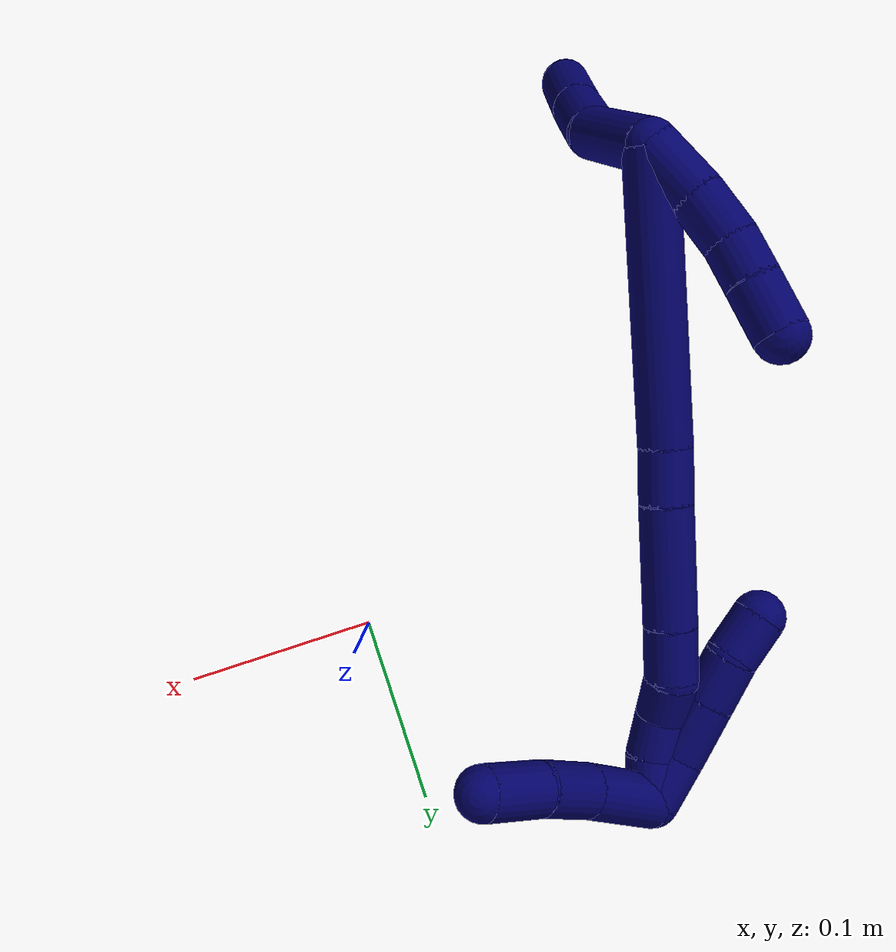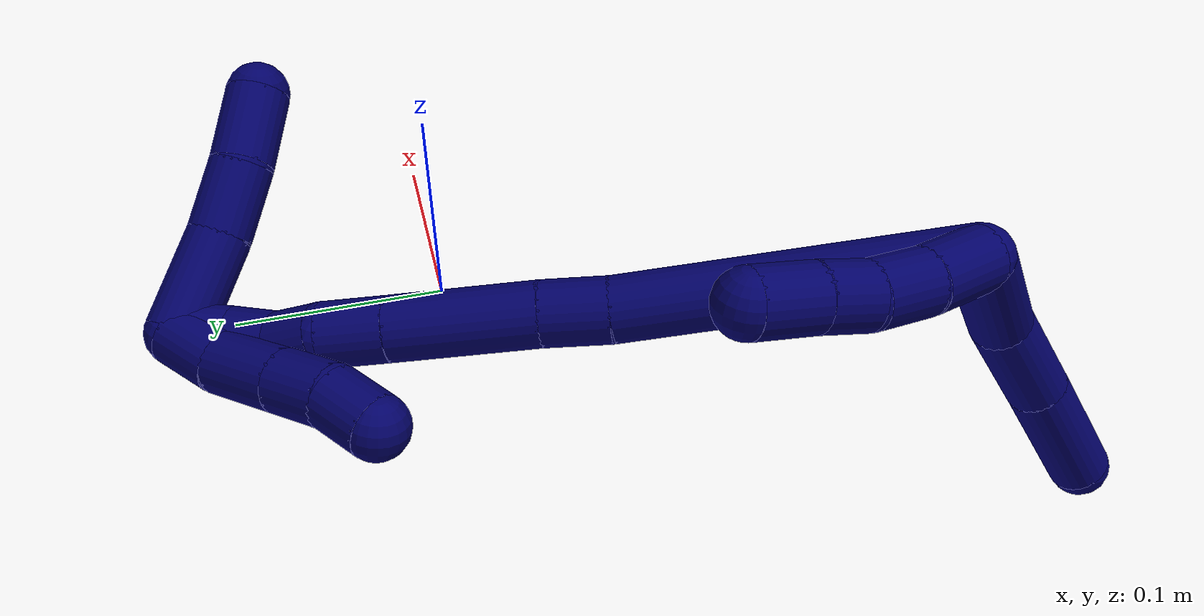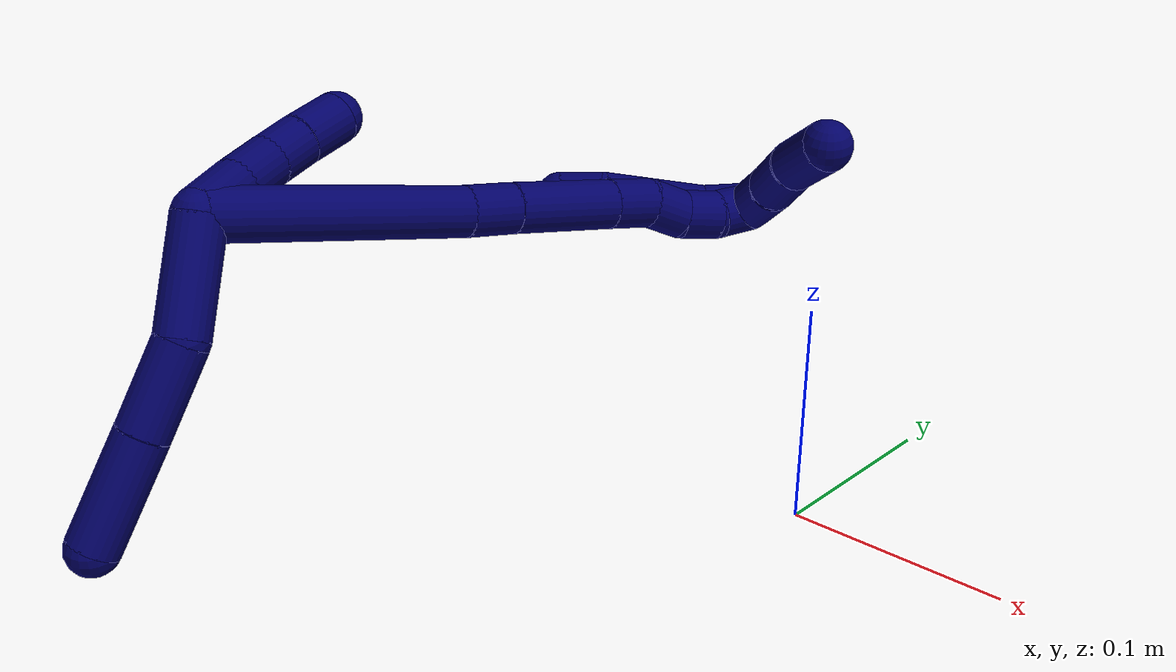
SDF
<sdf version="1.7">
 <world name="default">
  <model name="7">
   <static>0</static>
   <link name="7">
    <collision name="collision-cylinder-e_1_2_8">
     <pose>0.010413 -0.014123 -0.020198 2.5314 0.399748 1.14324</pose>
     <geometry><cylinder><radius>0.0125</radius><length>0.053511</length></cylinder></geometry>
     <surface>
      <friction><ode><mu>1.16</mu><mu2>1.16</mu2><slip1>0</slip1><slip2>0</slip2></ode></friction>
      <contact><ode><kp>1e+06</kp><kd>1</kd><max_vel>0</max_vel><min_depth>0.001</min_depth></ode></contact>
     </surface>
    </collision>
    <visual name="visual-cylinder-e_1_2_8">
     <pose>0.010413 -0.014123 -0.020198 2.5314 0.399748 1.14324</pose>
     <geometry><cylinder><radius>0.0125</radius><length>0.053511</length></cylinder></geometry>
     <material><ambient>0.003922 0 0.403922 1</ambient></material>
    </visual>
    <collision name="collision-cylinder-e_2_8_9">
     <pose>0.022394 -0.041488 -0.057008 2.46854 0.073677 0.209926</pose>
     <geometry><cylinder><radius>0.0125</radius><length>0.042602</length></cylinder></geometry>
     <surface>
      <friction><ode><mu>1.16</mu><mu2>1.16</mu2><slip1>0</slip1><slip2>0</slip2></ode></friction>
      <contact><ode><kp>1e+06</kp><kd>1</kd><max_vel>0</max_vel><min_depth>0.001</min_depth></ode></contact>
     </surface>
    </collision>
    <visual name="visual-cylinder-e_2_8_9">
     <pose>0.022394 -0.041488 -0.057008 2.46854 0.073677 0.209926</pose>
     <geometry><cylinder><radius>0.0125</radius><length>0.042602</length></cylinder></geometry>
     <material><ambient>0.003922 0 0.403922 1</ambient></material>
    </visual>
    <collision name="collision-cylinder-e_3_9_6">
     <pose>0.025031 -0.071212 -0.094906 2.48276 0.039709 0.116037</pose>
     <geometry><cylinder><radius>0.0125</radius><length>0.053886</length></cylinder></geometry>
     <surface>
      <friction><ode><mu>1.16</mu><mu2>1.16</mu2><slip1>0</slip1><slip2>0</slip2></ode></friction>
      <contact><ode><kp>1e+06</kp><kd>1</kd><max_vel>0</max_vel><min_depth>0.001</min_depth></ode></contact>
     </surface>
    </collision>
    <visual name="visual-cylinder-e_3_9_6">
     <pose>0.025031 -0.071212 -0.094906 2.48276 0.039709 0.116037</pose>
     <geometry><cylinder><radius>0.0125</radius><length>0.053886</length></cylinder></geometry>
     <material><ambient>0.003922 0 0.403922 1</ambient></material>
    </visual>
    <collision name="collision-cylinder-e_1_2_10">
     <pose>-0.006631 0.013186 -0.000894 -1.63852 -0.464991 0.496316</pose>
     <geometry><cylinder><radius>0.0125</radius><length>0.029573</length></cylinder></geometry>
     <surface>
      <friction><ode><mu>1.16</mu><mu2>1.16</mu2><slip1>0</slip1><slip2>0</slip2></ode></friction>
      <contact><ode><kp>1e+06</kp><kd>1</kd><max_vel>0</max_vel><min_depth>0.001</min_depth></ode></contact>
     </surface>
    </collision>
    <visual name="visual-cylinder-e_1_2_10">
     <pose>-0.006631 0.013186 -0.000894 -1.63852 -0.464991 0.496316</pose>
     <geometry><cylinder><radius>0.0125</radius><length>0.029573</length></cylinder></geometry>
     <material><ambient>0.003922 0 0.403922 1</ambient></material>
    </visual>
    <collision name="collision-cylinder-e_2_10_11">
     <pose>-0.017524 0.038015 -0.001982 -1.58736 -0.350926 0.356666</pose>
     <geometry><cylinder><radius>0.0125</radius><length>0.0248</length></cylinder></geometry>
     <surface>
      <friction><ode><mu>1.16</mu><mu2>1.16</mu2><slip1>0</slip1><slip2>0</slip2></ode></friction>
      <contact><ode><kp>1e+06</kp><kd>1</kd><max_vel>0</max_vel><min_depth>0.001</min_depth></ode></contact>
     </surface>
    </collision>
    <visual name="visual-cylinder-e_2_10_11">
     <pose>-0.017524 0.038015 -0.001982 -1.58736 -0.350926 0.356666</pose>
     <geometry><cylinder><radius>0.0125</radius><length>0.0248</length></cylinder></geometry>
     <material><ambient>0.003922 0 0.403922 1</ambient></material>
    </visual>
    <collision name="collision-cylinder-e_3_11_12">
     <pose>-0.023752 0.059641 -0.001268 -1.48025 -0.19357 0.176882</pose>
     <geometry><cylinder><radius>0.0125</radius><length>0.02043</length></cylinder></geometry>
     <surface>
      <friction><ode><mu>1.16</mu><mu2>1.16</mu2><slip1>0</slip1><slip2>0</slip2></ode></friction>
      <contact><ode><kp>1e+06</kp><kd>1</kd><max_vel>0</max_vel><min_depth>0.001</min_depth></ode></contact>
     </surface>
    </collision>
    <visual name="visual-cylinder-e_3_11_12">
     <pose>-0.023752 0.059641 -0.001268 -1.48025 -0.19357 0.176882</pose>
     <geometry><cylinder><radius>0.0125</radius><length>0.02043</length></cylinder></geometry>
     <material><ambient>0.003922 0 0.403922 1</ambient></material>
    </visual>
    <collision name="collision-cylinder-e_4_12_5">
     <pose>-0.028177 0.081973 5.8e-05 -1.53683 -0.196599 0.190072</pose>
     <geometry><cylinder><radius>0.0125</radius><length>0.025197</length></cylinder></geometry>
     <surface>
      <friction><ode><mu>1.16</mu><mu2>1.16</mu2><slip1>0</slip1><slip2>0</slip2></ode></friction>
      <contact><ode><kp>1e+06</kp><kd>1</kd><max_vel>0</max_vel><min_depth>0.001</min_depth></ode></contact>
     </surface>
    </collision>
    <visual name="visual-cylinder-e_4_12_5">
     <pose>-0.028177 0.081973 5.8e-05 -1.53683 -0.196599 0.190072</pose>
     <geometry><cylinder><radius>0.0125</radius><length>0.025197</length></cylinder></geometry>
     <material><ambient>0.003922 0 0.403922 1</ambient></material>
    </visual>
    <collision name="collision-cylinder-e_1_2_13">
     <pose>0.013115 0.061528 -0.018869 -1.86837 0.201037 -0.271177</pose>
     <geometry><cylinder><radius>0.0125</radius><length>0.131358</length></cylinder></geometry>
     <surface>
      <friction><ode><mu>1.16</mu><mu2>1.16</mu2><slip1>0</slip1><slip2>0</slip2></ode></friction>
      <contact><ode><kp>1e+06</kp><kd>1</kd><max_vel>0</max_vel><min_depth>0.001</min_depth></ode></contact>
     </surface>
    </collision>
    <visual name="visual-cylinder-e_1_2_13">
     <pose>0.013115 0.061528 -0.018869 -1.86837 0.201037 -0.271177</pose>
     <geometry><cylinder><radius>0.0125</radius><length>0.131358</length></cylinder></geometry>
     <material><ambient>0.003922 0 0.403922 1</ambient></material>
    </visual>
    <collision name="collision-cylinder-e_2_13_14">
     <pose>0.029305 0.135256 -0.040485 -1.79221 0.241075 -0.300559</pose>
     <geometry><cylinder><radius>0.0125</radius><length>0.025756</length></cylinder></geometry>
     <surface>
      <friction><ode><mu>1.16</mu><mu2>1.16</mu2><slip1>0</slip1><slip2>0</slip2></ode></friction>
      <contact><ode><kp>1e+06</kp><kd>1</kd><max_vel>0</max_vel><min_depth>0.001</min_depth></ode></contact>
     </surface>
    </collision>
    <visual name="visual-cylinder-e_2_13_14">
     <pose>0.029305 0.135256 -0.040485 -1.79221 0.241075 -0.300559</pose>
     <geometry><cylinder><radius>0.0125</radius><length>0.025756</length></cylinder></geometry>
     <material><ambient>0.003922 0 0.403922 1</ambient></material>
    </visual>
    <collision name="collision-cylinder-e_3_14_15">
     <pose>0.03854 0.174158 -0.050298 -1.82954 0.219464 -0.284326</pose>
     <geometry><cylinder><radius>0.0125</radius><length>0.056598</length></cylinder></geometry>
     <surface>
      <friction><ode><mu>1.16</mu><mu2>1.16</mu2><slip1>0</slip1><slip2>0</slip2></ode></friction>
      <contact><ode><kp>1e+06</kp><kd>1</kd><max_vel>0</max_vel><min_depth>0.001</min_depth></ode></contact>
     </surface>
    </collision>
    <visual name="visual-cylinder-e_3_14_15">
     <pose>0.03854 0.174158 -0.050298 -1.82954 0.219464 -0.284326</pose>
     <geometry><cylinder><radius>0.0125</radius><length>0.056598</length></cylinder></geometry>
     <material><ambient>0.003922 0 0.403922 1</ambient></material>
    </visual>
    <collision name="collision-cylinder-e_4_15_16">
     <pose>0.047631 0.21268 -0.060524 -1.83193 0.234997 -0.305071</pose>
     <geometry><cylinder><radius>0.0125</radius><length>0.025164</length></cylinder></geometry>
     <surface>
      <friction><ode><mu>1.16</mu><mu2>1.16</mu2><slip1>0</slip1><slip2>0</slip2></ode></friction>
      <contact><ode><kp>1e+06</kp><kd>1</kd><max_vel>0</max_vel><min_depth>0.001</min_depth></ode></contact>
     </surface>
    </collision>
    <visual name="visual-cylinder-e_4_15_16">
     <pose>0.047631 0.21268 -0.060524 -1.83193 0.234997 -0.305071</pose>
     <geometry><cylinder><radius>0.0125</radius><length>0.025164</length></cylinder></geometry>
     <material><ambient>0.003922 0 0.403922 1</ambient></material>
    </visual>
    <collision name="collision-cylinder-e_5_16_17">
     <pose>0.054882 0.232411 -0.068486 -2.11651 0.43693 -0.751583</pose>
     <geometry><cylinder><radius>0.0125</radius><length>0.020426</length></cylinder></geometry>
     <surface>
      <friction><ode><mu>1.16</mu><mu2>1.16</mu2><slip1>0</slip1><slip2>0</slip2></ode></friction>
      <contact><ode><kp>1e+06</kp><kd>1</kd><max_vel>0</max_vel><min_depth>0.001</min_depth></ode></contact>
     </surface>
    </collision>
    <visual name="visual-cylinder-e_5_16_17">
     <pose>0.054882 0.232411 -0.068486 -2.11651 0.43693 -0.751583</pose>
     <geometry><cylinder><radius>0.0125</radius><length>0.020426</length></cylinder></geometry>
     <material><ambient>0.003922 0 0.403922 1</ambient></material>
    </visual>
    <collision name="collision-cylinder-e_6_17_18">
     <pose>0.063873 0.249064 -0.075007 -1.76478 0.482685 -0.581443</pose>
     <geometry><cylinder><radius>0.0125</radius><length>0.02012</length></cylinder></geometry>
     <surface>
      <friction><ode><mu>1.16</mu><mu2>1.16</mu2><slip1>0</slip1><slip2>0</slip2></ode></friction>
      <contact><ode><kp>1e+06</kp><kd>1</kd><max_vel>0</max_vel><min_depth>0.001</min_depth></ode></contact>
     </surface>
    </collision>
    <visual name="visual-cylinder-e_6_17_18">
     <pose>0.063873 0.249064 -0.075007 -1.76478 0.482685 -0.581443</pose>
     <geometry><cylinder><radius>0.0125</radius><length>0.02012</length></cylinder></geometry>
     <material><ambient>0.003922 0 0.403922 1</ambient></material>
    </visual>
    <collision name="collision-cylinder-e_7_18_1">
     <pose>0.071231 0.267727 -0.077195 -1.61814 0.264344 -0.277006</pose>
     <geometry><cylinder><radius>0.0125</radius><length>0.020578</length></cylinder></geometry>
     <surface>
      <friction><ode><mu>1.16</mu><mu2>1.16</mu2><slip1>0</slip1><slip2>0</slip2></ode></friction>
      <contact><ode><kp>1e+06</kp><kd>1</kd><max_vel>0</max_vel><min_depth>0.001</min_depth></ode></contact>
     </surface>
    </collision>
    <visual name="visual-cylinder-e_7_18_1">
     <pose>0.071231 0.267727 -0.077195 -1.61814 0.264344 -0.277006</pose>
     <geometry><cylinder><radius>0.0125</radius><length>0.020578</length></cylinder></geometry>
     <material><ambient>0.003922 0 0.403922 1</ambient></material>
    </visual>
    <collision name="collision-cylinder-e_1_1_19">
     <pose>0.065475 0.269029 -0.078501 1.66752 -0.772868 -0.84285</pose>
     <geometry><cylinder><radius>0.0125</radius><length>0.02419</length></cylinder></geometry>
     <surface>
      <friction><ode><mu>1.16</mu><mu2>1.16</mu2><slip1>0</slip1><slip2>0</slip2></ode></friction>
      <contact><ode><kp>1e+06</kp><kd>1</kd><max_vel>0</max_vel><min_depth>0.001</min_depth></ode></contact>
     </surface>
    </collision>
    <visual name="visual-cylinder-e_1_1_19">
     <pose>0.065475 0.269029 -0.078501 1.66752 -0.772868 -0.84285</pose>
     <geometry><cylinder><radius>0.0125</radius><length>0.02419</length></cylinder></geometry>
     <material><ambient>0.003922 0 0.403922 1</ambient></material>
    </visual>
    <collision name="collision-cylinder-e_2_19_20">
     <pose>0.047109 0.249471 -0.076885 1.35031 -0.724405 -0.589135</pose>
     <geometry><cylinder><radius>0.0125</radius><length>0.029941</length></cylinder></geometry>
     <surface>
      <friction><ode><mu>1.16</mu><mu2>1.16</mu2><slip1>0</slip1><slip2>0</slip2></ode></friction>
      <contact><ode><kp>1e+06</kp><kd>1</kd><max_vel>0</max_vel><min_depth>0.001</min_depth></ode></contact>
     </surface>
    </collision>
    <visual name="visual-cylinder-e_2_19_20">
     <pose>0.047109 0.249471 -0.076885 1.35031 -0.724405 -0.589135</pose>
     <geometry><cylinder><radius>0.0125</radius><length>0.029941</length></cylinder></geometry>
     <material><ambient>0.003922 0 0.403922 1</ambient></material>
    </visual>
    <collision name="collision-cylinder-e_3_20_21">
     <pose>0.029411 0.22995 -0.072509 1.35018 -0.72408 -0.588789</pose>
     <geometry><cylinder><radius>0.0125</radius><length>0.023479</length></cylinder></geometry>
     <surface>
      <friction><ode><mu>1.16</mu><mu2>1.16</mu2><slip1>0</slip1><slip2>0</slip2></ode></friction>
      <contact><ode><kp>1e+06</kp><kd>1</kd><max_vel>0</max_vel><min_depth>0.001</min_depth></ode></contact>
     </surface>
    </collision>
    <visual name="visual-cylinder-e_3_20_21">
     <pose>0.029411 0.22995 -0.072509 1.35018 -0.72408 -0.588789</pose>
     <geometry><cylinder><radius>0.0125</radius><length>0.023479</length></cylinder></geometry>
     <material><ambient>0.003922 0 0.403922 1</ambient></material>
    </visual>
    <collision name="collision-cylinder-e_4_21_4">
     <pose>0.01322 0.214005 -0.071132 1.64504 -0.850506 -0.907721</pose>
     <geometry><cylinder><radius>0.0125</radius><length>0.02239</length></cylinder></geometry>
     <surface>
      <friction><ode><mu>1.16</mu><mu2>1.16</mu2><slip1>0</slip1><slip2>0</slip2></ode></friction>
      <contact><ode><kp>1e+06</kp><kd>1</kd><max_vel>0</max_vel><min_depth>0.001</min_depth></ode></contact>
     </surface>
    </collision>
    <visual name="visual-cylinder-e_4_21_4">
     <pose>0.01322 0.214005 -0.071132 1.64504 -0.850506 -0.907721</pose>
     <geometry><cylinder><radius>0.0125</radius><length>0.02239</length></cylinder></geometry>
     <material><ambient>0.003922 0 0.403922 1</ambient></material>
    </visual>
    <collision name="collision-cylinder-e_1_1_22">
     <pose>0.086515 0.270296 -0.063585 0.481212 0.670472 0.170545</pose>
     <geometry><cylinder><radius>0.0125</radius><length>0.040543</length></cylinder></geometry>
     <surface>
      <friction><ode><mu>1.16</mu><mu2>1.16</mu2><slip1>0</slip1><slip2>0</slip2></ode></friction>
      <contact><ode><kp>1e+06</kp><kd>1</kd><max_vel>0</max_vel><min_depth>0.001</min_depth></ode></contact>
     </surface>
    </collision>
    <visual name="visual-cylinder-e_1_1_22">
     <pose>0.086515 0.270296 -0.063585 0.481212 0.670472 0.170545</pose>
     <geometry><cylinder><radius>0.0125</radius><length>0.040543</length></cylinder></geometry>
     <material><ambient>0.003922 0 0.403922 1</ambient></material>
    </visual>
    <collision name="collision-cylinder-e_2_22_23">
     <pose>0.107658 0.258851 -0.038475 0.355319 0.628237 0.116532</pose>
     <geometry><cylinder><radius>0.0125</radius><length>0.029086</length></cylinder></geometry>
     <surface>
      <friction><ode><mu>1.16</mu><mu2>1.16</mu2><slip1>0</slip1><slip2>0</slip2></ode></friction>
      <contact><ode><kp>1e+06</kp><kd>1</kd><max_vel>0</max_vel><min_depth>0.001</min_depth></ode></contact>
     </surface>
    </collision>
    <visual name="visual-cylinder-e_2_22_23">
     <pose>0.107658 0.258851 -0.038475 0.355319 0.628237 0.116532</pose>
     <geometry><cylinder><radius>0.0125</radius><length>0.029086</length></cylinder></geometry>
     <material><ambient>0.003922 0 0.403922 1</ambient></material>
    </visual>
    <collision name="collision-cylinder-e_3_23_3">
     <pose>0.126825 0.251792 -0.017002 0.276802 0.774487 0.113494</pose>
     <geometry><cylinder><radius>0.0125</radius><length>0.030372</length></cylinder></geometry>
     <surface>
      <friction><ode><mu>1.16</mu><mu2>1.16</mu2><slip1>0</slip1><slip2>0</slip2></ode></friction>
      <contact><ode><kp>1e+06</kp><kd>1</kd><max_vel>0</max_vel><min_depth>0.001</min_depth></ode></contact>
     </surface>
    </collision>
    <visual name="visual-cylinder-e_3_23_3">
     <pose>0.126825 0.251792 -0.017002 0.276802 0.774487 0.113494</pose>
     <geometry><cylinder><radius>0.0125</radius><length>0.030372</length></cylinder></geometry>
     <material><ambient>0.003922 0 0.403922 1</ambient></material>
    </visual>
    <collision name="collision-sphere-3">
     <pose>0.137445 0.248825 -0.006561 0 -0 0</pose>
     <geometry><sphere><radius>0.0125</radius></sphere></geometry>
     <surface>
      <friction><ode><mu>1.16</mu><mu2>1.16</mu2><slip1>0</slip1><slip2>0</slip2></ode></friction>
      <contact><ode><kp>1e+06</kp><kd>1</kd><max_vel>0</max_vel><min_depth>0.001</min_depth></ode></contact>
     </surface>
    </collision>
    <visual name="visual-sphere-3">
     <pose>0.137445 0.248825 -0.006561 0 -0 0</pose>
     <geometry><sphere><radius>0.0125</radius></sphere></geometry>
     <material><ambient>0.003922 0 0.403922 1</ambient></material>
    </visual>
    <collision name="collision-sphere-23">
     <pose>0.116205 0.254758 -0.027444 0 -0 0</pose>
     <geometry><sphere><radius>0.0125</radius></sphere></geometry>
     <surface>
      <friction><ode><mu>1.16</mu><mu2>1.16</mu2><slip1>0</slip1><slip2>0</slip2></ode></friction>
      <contact><ode><kp>1e+06</kp><kd>1</kd><max_vel>0</max_vel><min_depth>0.001</min_depth></ode></contact>
     </surface>
    </collision>
    <visual name="visual-sphere-23">
     <pose>0.116205 0.254758 -0.027444 0 -0 0</pose>
     <geometry><sphere><radius>0.0125</radius></sphere></geometry>
     <material><ambient>0.003922 0 0.403922 1</ambient></material>
    </visual>
    <collision name="collision-sphere-22">
     <pose>0.099111 0.262945 -0.049506 0 -0 0</pose>
     <geometry><sphere><radius>0.0125</radius></sphere></geometry>
     <surface>
      <friction><ode><mu>1.16</mu><mu2>1.16</mu2><slip1>0</slip1><slip2>0</slip2></ode></friction>
      <contact><ode><kp>1e+06</kp><kd>1</kd><max_vel>0</max_vel><min_depth>0.001</min_depth></ode></contact>
     </surface>
    </collision>
    <visual name="visual-sphere-22">
     <pose>0.099111 0.262945 -0.049506 0 -0 0</pose>
     <geometry><sphere><radius>0.0125</radius></sphere></geometry>
     <material><ambient>0.003922 0 0.403922 1</ambient></material>
    </visual>
    <collision name="collision-sphere-4">
     <pose>0.004806 0.206641 -0.07168 0 -0 0</pose>
     <geometry><sphere><radius>0.0125</radius></sphere></geometry>
     <surface>
      <friction><ode><mu>1.16</mu><mu2>1.16</mu2><slip1>0</slip1><slip2>0</slip2></ode></friction>
      <contact><ode><kp>1e+06</kp><kd>1</kd><max_vel>0</max_vel><min_depth>0.001</min_depth></ode></contact>
     </surface>
    </collision>
    <visual name="visual-sphere-4">
     <pose>0.004806 0.206641 -0.07168 0 -0 0</pose>
     <geometry><sphere><radius>0.0125</radius></sphere></geometry>
     <material><ambient>0.003922 0 0.403922 1</ambient></material>
    </visual>
    <collision name="collision-sphere-21">
     <pose>0.021635 0.221369 -0.070584 0 -0 0</pose>
     <geometry><sphere><radius>0.0125</radius></sphere></geometry>
     <surface>
      <friction><ode><mu>1.16</mu><mu2>1.16</mu2><slip1>0</slip1><slip2>0</slip2></ode></friction>
      <contact><ode><kp>1e+06</kp><kd>1</kd><max_vel>0</max_vel><min_depth>0.001</min_depth></ode></contact>
     </surface>
    </collision>
    <visual name="visual-sphere-21">
     <pose>0.021635 0.221369 -0.070584 0 -0 0</pose>
     <geometry><sphere><radius>0.0125</radius></sphere></geometry>
     <material><ambient>0.003922 0 0.403922 1</ambient></material>
    </visual>
    <collision name="collision-sphere-20">
     <pose>0.037188 0.238531 -0.074433 0 -0 0</pose>
     <geometry><sphere><radius>0.0125</radius></sphere></geometry>
     <surface>
      <friction><ode><mu>1.16</mu><mu2>1.16</mu2><slip1>0</slip1><slip2>0</slip2></ode></friction>
      <contact><ode><kp>1e+06</kp><kd>1</kd><max_vel>0</max_vel><min_depth>0.001</min_depth></ode></contact>
     </surface>
    </collision>
    <visual name="visual-sphere-20">
     <pose>0.037188 0.238531 -0.074433 0 -0 0</pose>
     <geometry><sphere><radius>0.0125</radius></sphere></geometry>
     <material><ambient>0.003922 0 0.403922 1</ambient></material>
    </visual>
    <collision name="collision-sphere-11">
     <pose>-0.021787 0.049658 -0.002175 0 -0 0</pose>
     <geometry><sphere><radius>0.0125</radius></sphere></geometry>
     <surface>
      <friction><ode><mu>1.16</mu><mu2>1.16</mu2><slip1>0</slip1><slip2>0</slip2></ode></friction>
      <contact><ode><kp>1e+06</kp><kd>1</kd><max_vel>0</max_vel><min_depth>0.001</min_depth></ode></contact>
     </surface>
    </collision>
    <visual name="visual-sphere-11">
     <pose>-0.021787 0.049658 -0.002175 0 -0 0</pose>
     <geometry><sphere><radius>0.0125</radius></sphere></geometry>
     <material><ambient>0.003922 0 0.403922 1</ambient></material>
    </visual>
    <collision name="collision-sphere-10">
     <pose>-0.013261 0.026373 -0.001789 0 -0 0</pose>
     <geometry><sphere><radius>0.0125</radius></sphere></geometry>
     <surface>
      <friction><ode><mu>1.16</mu><mu2>1.16</mu2><slip1>0</slip1><slip2>0</slip2></ode></friction>
      <contact><ode><kp>1e+06</kp><kd>1</kd><max_vel>0</max_vel><min_depth>0.001</min_depth></ode></contact>
     </surface>
    </collision>
    <visual name="visual-sphere-10">
     <pose>-0.013261 0.026373 -0.001789 0 -0 0</pose>
     <geometry><sphere><radius>0.0125</radius></sphere></geometry>
     <material><ambient>0.003922 0 0.403922 1</ambient></material>
    </visual>
    <collision name="collision-sphere-6">
     <pose>0.026101 -0.087694 -0.116193 0 -0 0</pose>
     <geometry><sphere><radius>0.0125</radius></sphere></geometry>
     <surface>
      <friction><ode><mu>1.16</mu><mu2>1.16</mu2><slip1>0</slip1><slip2>0</slip2></ode></friction>
      <contact><ode><kp>1e+06</kp><kd>1</kd><max_vel>0</max_vel><min_depth>0.001</min_depth></ode></contact>
     </surface>
    </collision>
    <visual name="visual-sphere-6">
     <pose>0.026101 -0.087694 -0.116193 0 -0 0</pose>
     <geometry><sphere><radius>0.0125</radius></sphere></geometry>
     <material><ambient>0.003922 0 0.403922 1</ambient></material>
    </visual>
    <collision name="collision-sphere-9">
     <pose>0.023962 -0.054731 -0.073618 0 -0 0</pose>
     <geometry><sphere><radius>0.0125</radius></sphere></geometry>
     <surface>
      <friction><ode><mu>1.16</mu><mu2>1.16</mu2><slip1>0</slip1><slip2>0</slip2></ode></friction>
      <contact><ode><kp>1e+06</kp><kd>1</kd><max_vel>0</max_vel><min_depth>0.001</min_depth></ode></contact>
     </surface>
    </collision>
    <visual name="visual-sphere-9">
     <pose>0.023962 -0.054731 -0.073618 0 -0 0</pose>
     <geometry><sphere><radius>0.0125</radius></sphere></geometry>
     <material><ambient>0.003922 0 0.403922 1</ambient></material>
    </visual>
    <collision name="collision-sphere-2">
     <geometry><sphere><radius>0.0125</radius></sphere></geometry>
     <surface>
      <friction><ode><mu>1.16</mu><mu2>1.16</mu2><slip1>0</slip1><slip2>0</slip2></ode></friction>
      <contact><ode><kp>1e+06</kp><kd>1</kd><max_vel>0</max_vel><min_depth>0.001</min_depth></ode></contact>
     </surface>
    </collision>
    <visual name="visual-sphere-2">
     <geometry><sphere><radius>0.0125</radius></sphere></geometry>
     <material><ambient>0.003922 0 0.403922 1</ambient></material>
    </visual>
    <collision name="collision-sphere-19">
     <pose>0.05703 0.260411 -0.079337 0 -0 0</pose>
     <geometry><sphere><radius>0.0125</radius></sphere></geometry>
     <surface>
      <friction><ode><mu>1.16</mu><mu2>1.16</mu2><slip1>0</slip1><slip2>0</slip2></ode></friction>
      <contact><ode><kp>1e+06</kp><kd>1</kd><max_vel>0</max_vel><min_depth>0.001</min_depth></ode></contact>
     </surface>
    </collision>
    <visual name="visual-sphere-19">
     <pose>0.05703 0.260411 -0.079337 0 -0 0</pose>
     <geometry><sphere><radius>0.0125</radius></sphere></geometry>
     <material><ambient>0.003922 0 0.403922 1</ambient></material>
    </visual>
    <collision name="collision-sphere-8">
     <pose>0.020826 -0.028245 -0.040397 0 -0 0</pose>
     <geometry><sphere><radius>0.0125</radius></sphere></geometry>
     <surface>
      <friction><ode><mu>1.16</mu><mu2>1.16</mu2><slip1>0</slip1><slip2>0</slip2></ode></friction>
      <contact><ode><kp>1e+06</kp><kd>1</kd><max_vel>0</max_vel><min_depth>0.001</min_depth></ode></contact>
     </surface>
    </collision>
    <visual name="visual-sphere-8">
     <pose>0.020826 -0.028245 -0.040397 0 -0 0</pose>
     <geometry><sphere><radius>0.0125</radius></sphere></geometry>
     <material><ambient>0.003922 0 0.403922 1</ambient></material>
    </visual>
    <collision name="collision-sphere-12">
     <pose>-0.025717 0.069625 -0.000362 0 -0 0</pose>
     <geometry><sphere><radius>0.0125</radius></sphere></geometry>
     <surface>
      <friction><ode><mu>1.16</mu><mu2>1.16</mu2><slip1>0</slip1><slip2>0</slip2></ode></friction>
      <contact><ode><kp>1e+06</kp><kd>1</kd><max_vel>0</max_vel><min_depth>0.001</min_depth></ode></contact>
     </surface>
    </collision>
    <visual name="visual-sphere-12">
     <pose>-0.025717 0.069625 -0.000362 0 -0 0</pose>
     <geometry><sphere><radius>0.0125</radius></sphere></geometry>
     <material><ambient>0.003922 0 0.403922 1</ambient></material>
    </visual>
    <collision name="collision-sphere-5">
     <pose>-0.030638 0.094322 0.000477 0 -0 0</pose>
     <geometry><sphere><radius>0.0125</radius></sphere></geometry>
     <surface>
      <friction><ode><mu>1.16</mu><mu2>1.16</mu2><slip1>0</slip1><slip2>0</slip2></ode></friction>
      <contact><ode><kp>1e+06</kp><kd>1</kd><max_vel>0</max_vel><min_depth>0.001</min_depth></ode></contact>
     </surface>
    </collision>
    <visual name="visual-sphere-5">
     <pose>-0.030638 0.094322 0.000477 0 -0 0</pose>
     <geometry><sphere><radius>0.0125</radius></sphere></geometry>
     <material><ambient>0.003922 0 0.403922 1</ambient></material>
    </visual>
    <collision name="collision-sphere-13">
     <pose>0.02623 0.123056 -0.037739 0 -0 0</pose>
     <geometry><sphere><radius>0.0125</radius></sphere></geometry>
     <surface>
      <friction><ode><mu>1.16</mu><mu2>1.16</mu2><slip1>0</slip1><slip2>0</slip2></ode></friction>
      <contact><ode><kp>1e+06</kp><kd>1</kd><max_vel>0</max_vel><min_depth>0.001</min_depth></ode></contact>
     </surface>
    </collision>
    <visual name="visual-sphere-13">
     <pose>0.02623 0.123056 -0.037739 0 -0 0</pose>
     <geometry><sphere><radius>0.0125</radius></sphere></geometry>
     <material><ambient>0.003922 0 0.403922 1</ambient></material>
    </visual>
    <collision name="collision-sphere-14">
     <pose>0.032379 0.147457 -0.043231 0 -0 0</pose>
     <geometry><sphere><radius>0.0125</radius></sphere></geometry>
     <surface>
      <friction><ode><mu>1.16</mu><mu2>1.16</mu2><slip1>0</slip1><slip2>0</slip2></ode></friction>
      <contact><ode><kp>1e+06</kp><kd>1</kd><max_vel>0</max_vel><min_depth>0.001</min_depth></ode></contact>
     </surface>
    </collision>
    <visual name="visual-sphere-14">
     <pose>0.032379 0.147457 -0.043231 0 -0 0</pose>
     <geometry><sphere><radius>0.0125</radius></sphere></geometry>
     <material><ambient>0.003922 0 0.403922 1</ambient></material>
    </visual>
    <collision name="collision-sphere-15">
     <pose>0.044701 0.200858 -0.057365 0 -0 0</pose>
     <geometry><sphere><radius>0.0125</radius></sphere></geometry>
     <surface>
      <friction><ode><mu>1.16</mu><mu2>1.16</mu2><slip1>0</slip1><slip2>0</slip2></ode></friction>
      <contact><ode><kp>1e+06</kp><kd>1</kd><max_vel>0</max_vel><min_depth>0.001</min_depth></ode></contact>
     </surface>
    </collision>
    <visual name="visual-sphere-15">
     <pose>0.044701 0.200858 -0.057365 0 -0 0</pose>
     <geometry><sphere><radius>0.0125</radius></sphere></geometry>
     <material><ambient>0.003922 0 0.403922 1</ambient></material>
    </visual>
    <collision name="collision-sphere-16">
     <pose>0.050561 0.224501 -0.063684 0 -0 0</pose>
     <geometry><sphere><radius>0.0125</radius></sphere></geometry>
     <surface>
      <friction><ode><mu>1.16</mu><mu2>1.16</mu2><slip1>0</slip1><slip2>0</slip2></ode></friction>
      <contact><ode><kp>1e+06</kp><kd>1</kd><max_vel>0</max_vel><min_depth>0.001</min_depth></ode></contact>
     </surface>
    </collision>
    <visual name="visual-sphere-16">
     <pose>0.050561 0.224501 -0.063684 0 -0 0</pose>
     <geometry><sphere><radius>0.0125</radius></sphere></geometry>
     <material><ambient>0.003922 0 0.403922 1</ambient></material>
    </visual>
    <collision name="collision-sphere-17">
     <pose>0.059204 0.24032 -0.073289 0 -0 0</pose>
     <geometry><sphere><radius>0.0125</radius></sphere></geometry>
     <surface>
      <friction><ode><mu>1.16</mu><mu2>1.16</mu2><slip1>0</slip1><slip2>0</slip2></ode></friction>
      <contact><ode><kp>1e+06</kp><kd>1</kd><max_vel>0</max_vel><min_depth>0.001</min_depth></ode></contact>
     </surface>
    </collision>
    <visual name="visual-sphere-17">
     <pose>0.059204 0.24032 -0.073289 0 -0 0</pose>
     <geometry><sphere><radius>0.0125</radius></sphere></geometry>
     <material><ambient>0.003922 0 0.403922 1</ambient></material>
    </visual>
    <collision name="collision-sphere-18">
     <pose>0.068543 0.257807 -0.076725 0 -0 0</pose>
     <geometry><sphere><radius>0.0125</radius></sphere></geometry>
     <surface>
      <friction><ode><mu>1.16</mu><mu2>1.16</mu2><slip1>0</slip1><slip2>0</slip2></ode></friction>
      <contact><ode><kp>1e+06</kp><kd>1</kd><max_vel>0</max_vel><min_depth>0.001</min_depth></ode></contact>
     </surface>
    </collision>
    <visual name="visual-sphere-18">
     <pose>0.068543 0.257807 -0.076725 0 -0 0</pose>
     <geometry><sphere><radius>0.0125</radius></sphere></geometry>
     <material><ambient>0.003922 0 0.403922 1</ambient></material>
    </visual>
    <collision name="collision-sphere-1">
     <pose>0.073919 0.277648 -0.077665 0 -0 0</pose>
     <geometry><sphere><radius>0.0125</radius></sphere></geometry>
     <surface>
      <friction><ode><mu>1.16</mu><mu2>1.16</mu2><slip1>0</slip1><slip2>0</slip2></ode></friction>
      <contact><ode><kp>1e+06</kp><kd>1</kd><max_vel>0</max_vel><min_depth>0.001</min_depth></ode></contact>
     </surface>
    </collision>
    <visual name="visual-sphere-1">
     <pose>0.073919 0.277648 -0.077665 0 -0 0</pose>
     <geometry><sphere><radius>0.0125</radius></sphere></geometry>
     <material><ambient>0.003922 0 0.403922 1</ambient></material>
    </visual>
    <inertial>
     <pose>0.033647 0.120801 -0.043761 0 -0 0</pose>
     <mass>0.75</mass>
     <inertia>
      <ixx>0.000222</ixx>
      <ixy>0</ixy>
      <ixz>0</ixz>
      <iyy>-7.9e-05</iyy>
      <iyz>0</iyz>
      <izz>-0.000243</izz>
     </inertia>
    </inertial>
   </link>
   <pose>-0.193885 -0.172535 0.141923 0.149493 0.151319 -0.056973</pose>
  </model>
 </world>
</sdf>
